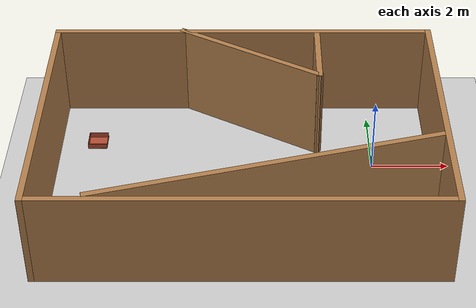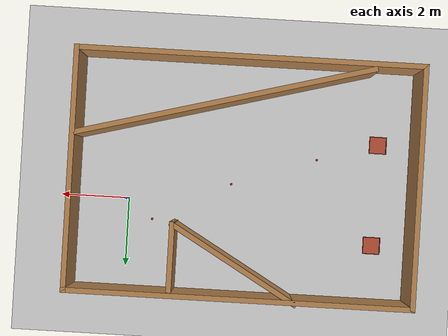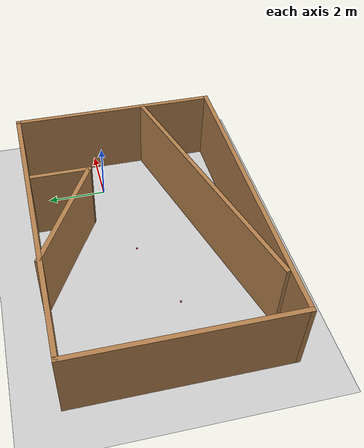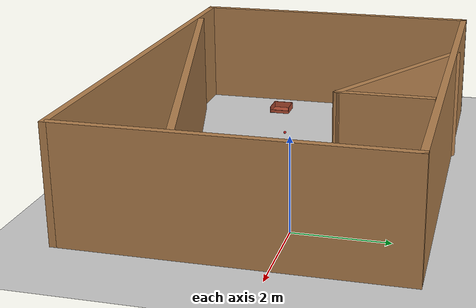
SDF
<sdf version="1.7">
 <world name="default">
  <model name="ground_plane">
   <static>1</static>
   <link name="link">
    <collision name="collision">
     <geometry><plane><normal>0 0 1</normal><size>100 100</size></plane></geometry>
     <surface>
      <contact><collide_bitmask>65535</collide_bitmask></contact>
      <friction><ode><mu>100</mu><mu2>50</mu2></ode></friction>
     </surface>
    </collision>
    <visual name="visual">
     <cast_shadows>0</cast_shadows>
     <geometry><plane><normal>0 0 1</normal><size>100 100</size></plane></geometry>
     <material>
      <script><uri>file://media/materials/scripts/gazebo.material</uri><name>Gazebo/Grey</name></script>
     </material>
    </visual>
   </link>
  </model>
  <light name="sun" type="directional">
   <pose>0 0 10 0 -0 0</pose>
   <diffuse>0.8 0.8 0.8 1</diffuse>
   <specular>0.2 0.2 0.2 1</specular>
   <attenuation>
    <range>1000</range>
    <constant>0.9</constant>
    <linear>0.01</linear>
    <quadratic>0.001</quadratic>
   </attenuation>
   <direction>-0.5 0.1 -0.9</direction>
   <spot><inner_angle>0</inner_angle><outer_angle>0</outer_angle><falloff>0</falloff></spot>
  </light>
  <scene><shadows>0</shadows><ambient>0.4 0.4 0.4 1</ambient><background>0.7 0.7 0.7 1</background></scene>
  <physics type="ode">
   <real_time_update_rate>1000</real_time_update_rate>
   <max_step_size>0.001</max_step_size>
   <real_time_factor>1</real_time_factor>
   <ode>
    <solver>
     <type>quick</type>
     <iters>150</iters>
     <precon_iters>0</precon_iters>
     <sor>1.4</sor>
     <use_dynamic_moi_rescaling>1</use_dynamic_moi_rescaling>
    </solver>
    <constraints>
     <cfm>1e-05</cfm>
     <erp>0.2</erp>
     <contact_max_correcting_vel>2000</contact_max_correcting_vel>
     <contact_surface_layer>0.01</contact_surface_layer>
    </constraints>
   </ode>
  </physics>
  <gravity>0 0 -9.8</gravity>
  <magnetic_field>6e-06 2.3e-05 -4.2e-05</magnetic_field>
  <atmosphere type="adiabatic"/>
  <audio><device>default</device></audio>
  <spherical_coordinates>
   <surface_model>EARTH_WGS84</surface_model>
   <latitude_deg>0</latitude_deg>
   <longitude_deg>0</longitude_deg>
   <elevation>0</elevation>
   <heading_deg>0</heading_deg>
  </spherical_coordinates>
  <model name="Room5">
   <pose>-3.37025 -0.55069 0 0 -0 0</pose>
   <link name="Wall_11">
    <collision name="Wall_11_Collision">
     <geometry><box><size>2 0.15 2.5</size></box></geometry>
     <pose>0 0 1.25 0 -0 0</pose>
    </collision>
    <visual name="Wall_11_Visual">
     <pose>0 0 1.25 0 -0 0</pose>
     <geometry><box><size>2 0.15 2.5</size></box></geometry>
     <material>
      <script><uri>file://media/materials/scripts/gazebo.material</uri><name>Gazebo/Wood</name></script>
      <ambient>1 1 1 1</ambient>
     </material>
     <meta><layer>0</layer></meta>
    </visual>
    <pose>1.96311 2.11609 0 0 -0 -1.5708</pose>
   </link>
   <link name="Wall_12">
    <collision name="Wall_12_Collision">
     <geometry><box><size>4.25 0.15 2.5</size></box></geometry>
     <pose>0 0 1.25 0 -0 0</pose>
    </collision>
    <visual name="Wall_12_Visual">
     <pose>0 0 1.25 0 -0 0</pose>
     <geometry><box><size>4.25 0.15 2.5</size></box></geometry>
     <material>
      <script><uri>file://media/materials/scripts/gazebo.material</uri><name>Gazebo/Wood</name></script>
      <ambient>1 1 1 1</ambient>
     </material>
     <meta><layer>0</layer></meta>
    </visual>
    <pose>0.187757 2.21609 0 0 -0 2.61799</pose>
   </link>
   <link name="Wall_2">
    <collision name="Wall_2_Collision">
     <geometry><box><size>10 0.15 2.5</size></box></geometry>
     <pose>0 0 1.25 0 -0 0</pose>
    </collision>
    <visual name="Wall_2_Visual">
     <pose>0 0 1.25 0 -0 0</pose>
     <geometry><box><size>10 0.15 2.5</size></box></geometry>
     <material>
      <script><uri>file://media/materials/scripts/gazebo.material</uri><name>Gazebo/Wood</name></script>
      <ambient>1 1 1 1</ambient>
     </material>
     <meta><layer>0</layer></meta>
    </visual>
    <pose>0 3.2025 0 0 -0 0</pose>
   </link>
   <link name="Wall_5">
    <collision name="Wall_5_Collision">
     <geometry><box><size>7 0.15 2.5</size></box></geometry>
     <pose>0 0 1.25 0 -0 0</pose>
    </collision>
    <visual name="Wall_5_Visual">
     <pose>0 0 1.25 0 -0 0</pose>
     <geometry><box><size>7 0.15 2.5</size></box></geometry>
     <material>
      <script><uri>file://media/materials/scripts/gazebo.material</uri><name>Gazebo/Wood</name></script>
      <ambient>1 1 1 1</ambient>
     </material>
     <meta><layer>0</layer></meta>
    </visual>
    <pose>4.925 -0.222499 0 0 -0 -1.5708</pose>
   </link>
   <link name="Wall_6">
    <collision name="Wall_6_Collision">
     <geometry><box><size>10 0.15 2.5</size></box></geometry>
     <pose>0 0 1.25 0 -0 0</pose>
    </collision>
    <visual name="Wall_6_Visual">
     <pose>0 0 1.25 0 -0 0</pose>
     <geometry><box><size>10 0.15 2.5</size></box></geometry>
     <material>
      <script><uri>file://media/materials/scripts/gazebo.material</uri><name>Gazebo/Wood</name></script>
      <ambient>1 1 1 1</ambient>
     </material>
     <meta><layer>0</layer></meta>
    </visual>
    <pose>0 -3.6475 0 0 -0 3.14159</pose>
   </link>
   <link name="Wall_7">
    <collision name="Wall_7_Collision">
     <geometry><box><size>7 0.15 2.5</size></box></geometry>
     <pose>0 0 1.25 0 -0 0</pose>
    </collision>
    <visual name="Wall_7_Visual">
     <pose>0 0 1.25 0 -0 0</pose>
     <geometry><box><size>7 0.15 2.5</size></box></geometry>
     <material>
      <script><uri>file://media/materials/scripts/gazebo.material</uri><name>Gazebo/Wood</name></script>
      <ambient>1 1 1 1</ambient>
     </material>
     <meta><layer>0</layer></meta>
    </visual>
    <pose>-4.925 -0.222499 0 0 -0 1.5708</pose>
   </link>
   <link name="Wall_9">
    <collision name="Wall_9_Collision">
     <geometry><box><size>8.75 0.15 2.5</size></box></geometry>
     <pose>0 0 1.25 0 -0 0</pose>
    </collision>
    <visual name="Wall_9_Visual">
     <pose>0 0 1.25 0 -0 0</pose>
     <geometry><box><size>8.75 0.15 2.5</size></box></geometry>
     <material>
      <script><uri>file://media/materials/scripts/gazebo.material</uri><name>Gazebo/Wood</name></script>
      <ambient>1 1 1 1</ambient>
     </material>
     <meta><layer>0</layer></meta>
    </visual>
    <pose>0.655849 -2.38106 0 0 -0 -2.87979</pose>
   </link>
   <static>1</static>
  </model>
  <model name="orange_ball_0">
   <link name="ball">
    <inertial>
     <mass>0.03</mass>
     <inertia>
      <ixx>1.268e-05</ixx>
      <iyy>1.268e-05</iyy>
      <izz>1.268e-05</izz>
      <ixy>0</ixy>
      <ixz>0</ixz>
      <iyz>0</iyz>
     </inertia>
    </inertial>
    <visual name="visual">
     <geometry><sphere><radius>0.0325</radius></sphere></geometry>
     <material>
      <script><uri>file://media/materials/scripts/gazebo.material</uri><name>Gazebo/RedBright</name></script>
      <shader type="pixel"><normal_map>__default__</normal_map></shader>
     </material>
    </visual>
    <collision name="collision">
     <geometry><sphere><radius>0.0325</radius></sphere></geometry>
     <surface>
      <friction>
       <ode><mu>1</mu><mu2>1</mu2><fdir1>0 0 0</fdir1><slip1>0</slip1><slip2>0</slip2></ode>
       <torsional>
        <coefficient>1</coefficient>
        <patch_radius>0</patch_radius>
        <surface_radius>0</surface_radius>
        <use_patch_radius>1</use_patch_radius>
        <ode><slip>0</slip></ode>
       </torsional>
      </friction>
      <bounce><restitution_coefficient>0</restitution_coefficient><threshold>1e+06</threshold></bounce>
      <contact>
       <collide_without_contact>0</collide_without_contact>
       <collide_without_contact_bitmask>1</collide_without_contact_bitmask>
       <collide_bitmask>1</collide_bitmask>
       <ode>
        <soft_cfm>0</soft_cfm>
        <soft_erp>0.2</soft_erp>
        <kp>1e+13</kp>
        <kd>1</kd>
        <max_vel>0.01</max_vel>
        <min_depth>0</min_depth>
       </ode>
       <bullet>
        <split_impulse>1</split_impulse>
        <split_impulse_penetration_threshold>-0.01</split_impulse_penetration_threshold>
        <soft_cfm>0</soft_cfm>
        <soft_erp>0.2</soft_erp>
        <kp>1e+13</kp>
        <kd>1</kd>
       </bullet>
      </contact>
     </surface>
    </collision>
   </link>
   <static>0</static>
   <pose>-0.716427 0.582178 0.0325 0 -0 0</pose>
  </model>
  <model name="strage_box">
   <static>1</static>
   <link name="box_body">
    <collision name="front_collision">
     <pose>0 0.245 0.08 0 -0 0</pose>
     <geometry><box><size>0.5 0.01 0.16</size></box></geometry>
    </collision>
    <visual name="front_visual">
     <pose>0 0.245 0.08 0 -0 0</pose>
     <geometry><box><size>0.5 0.01 0.16</size></box></geometry>
     <material><ambient>0.7 0.3 0.2 1</ambient></material>
    </visual>
    <collision name="back_collision">
     <pose>0 -0.245 0.08 0 -0 0</pose>
     <geometry><box><size>0.5 0.01 0.16</size></box></geometry>
    </collision>
    <visual name="back_visual">
     <pose>0 -0.245 0.08 0 -0 0</pose>
     <geometry><box><size>0.5 0.01 0.16</size></box></geometry>
     <material><ambient>0.7 0.3 0.2 1</ambient></material>
    </visual>
    <collision name="left_collision">
     <pose>-0.245 0 0.08 0 -0 0</pose>
     <geometry><box><size>0.01 0.5 0.16</size></box></geometry>
    </collision>
    <visual name="left_visual">
     <pose>-0.245 0 0.08 0 -0 0</pose>
     <geometry><box><size>0.01 0.5 0.16</size></box></geometry>
     <material><ambient>0.7 0.3 0.2 1</ambient></material>
    </visual>
    <collision name="right_collision">
     <pose>0.245 0 0.04 0 -0 0</pose>
     <geometry><box><size>0.01 0.5 0.08</size></box></geometry>
    </collision>
    <visual name="right_visual">
     <pose>0.245 0 0.04 0 -0 0</pose>
     <geometry><box><size>0.01 0.5 0.08</size></box></geometry>
     <material><ambient>0.7 0.3 0.2 1</ambient></material>
    </visual>
    <collision name="bottom_collision">
     <pose>0 0 0.005 0 -0 0</pose>
     <geometry><box><size>0.5 0.5 0.01</size></box></geometry>
    </collision>
    <visual name="bottom_visual">
     <pose>0 0 0.005 0 -0 0</pose>
     <geometry><box><size>0.5 0.5 0.01</size></box></geometry>
     <material><ambient>0.7 0.3 0.2 1</ambient></material>
    </visual>
   </link>
   <pose>-7.25526 0.99959 0 0 -0 0</pose>
  </model>
  <model name="strage_box_0">
   <static>1</static>
   <link name="box_body">
    <collision name="front_collision">
     <pose>0 0.245 0.08 0 -0 0</pose>
     <geometry><box><size>0.5 0.01 0.16</size></box></geometry>
    </collision>
    <visual name="front_visual">
     <pose>0 0.245 0.08 0 -0 0</pose>
     <geometry><box><size>0.5 0.01 0.16</size></box></geometry>
     <material><ambient>0.7 0.3 0.2 1</ambient></material>
    </visual>
    <collision name="back_collision">
     <pose>0 -0.245 0.08 0 -0 0</pose>
     <geometry><box><size>0.5 0.01 0.16</size></box></geometry>
    </collision>
    <visual name="back_visual">
     <pose>0 -0.245 0.08 0 -0 0</pose>
     <geometry><box><size>0.5 0.01 0.16</size></box></geometry>
     <material><ambient>0.7 0.3 0.2 1</ambient></material>
    </visual>
    <collision name="left_collision">
     <pose>-0.245 0 0.08 0 -0 0</pose>
     <geometry><box><size>0.01 0.5 0.16</size></box></geometry>
    </collision>
    <visual name="left_visual">
     <pose>-0.245 0 0.08 0 -0 0</pose>
     <geometry><box><size>0.01 0.5 0.16</size></box></geometry>
     <material><ambient>0.7 0.3 0.2 1</ambient></material>
    </visual>
    <collision name="right_collision">
     <pose>0.245 0 0.04 0 -0 0</pose>
     <geometry><box><size>0.01 0.5 0.08</size></box></geometry>
    </collision>
    <visual name="right_visual">
     <pose>0.245 0 0.04 0 -0 0</pose>
     <geometry><box><size>0.01 0.5 0.08</size></box></geometry>
     <material><ambient>0.7 0.3 0.2 1</ambient></material>
    </visual>
    <collision name="bottom_collision">
     <pose>0 0 0.005 0 -0 0</pose>
     <geometry><box><size>0.5 0.5 0.01</size></box></geometry>
    </collision>
    <visual name="bottom_visual">
     <pose>0 0 0.005 0 -0 0</pose>
     <geometry><box><size>0.5 0.5 0.01</size></box></geometry>
     <material><ambient>0.7 0.3 0.2 1</ambient></material>
    </visual>
   </link>
   <pose>-7.28125 -1.9809 0 0 -0 0</pose>
  </model>
  <model name="orange_ball_1">
   <link name="ball">
    <inertial>
     <mass>0.03</mass>
     <inertia>
      <ixx>1.268e-05</ixx>
      <iyy>1.268e-05</iyy>
      <izz>1.268e-05</izz>
      <ixy>0</ixy>
      <ixz>0</ixz>
      <iyz>0</iyz>
     </inertia>
    </inertial>
    <visual name="visual">
     <geometry><sphere><radius>0.0325</radius></sphere></geometry>
     <material>
      <script><uri>file://media/materials/scripts/gazebo.material</uri><name>Gazebo/RedBright</name></script>
      <shader type="pixel"><normal_map>__default__</normal_map></shader>
     </material>
    </visual>
    <collision name="collision">
     <geometry><sphere><radius>0.0325</radius></sphere></geometry>
     <surface>
      <friction>
       <ode><mu>1</mu><mu2>1</mu2><fdir1>0 0 0</fdir1><slip1>0</slip1><slip2>0</slip2></ode>
       <torsional>
        <coefficient>1</coefficient>
        <patch_radius>0</patch_radius>
        <surface_radius>0</surface_radius>
        <use_patch_radius>1</use_patch_radius>
        <ode><slip>0</slip></ode>
       </torsional>
      </friction>
      <bounce><restitution_coefficient>0</restitution_coefficient><threshold>1e+06</threshold></bounce>
      <contact>
       <collide_without_contact>0</collide_without_contact>
       <collide_without_contact_bitmask>1</collide_without_contact_bitmask>
       <collide_bitmask>1</collide_bitmask>
       <ode>
        <soft_cfm>0</soft_cfm>
        <soft_erp>0.2</soft_erp>
        <kp>1e+13</kp>
        <kd>1</kd>
        <max_vel>0.01</max_vel>
        <min_depth>0</min_depth>
       </ode>
       <bullet>
        <split_impulse>1</split_impulse>
        <split_impulse_penetration_threshold>-0.01</split_impulse_penetration_threshold>
        <soft_cfm>0</soft_cfm>
        <soft_erp>0.2</soft_erp>
        <kp>1e+13</kp>
        <kd>1</kd>
       </bullet>
      </contact>
     </surface>
    </collision>
   </link>
   <static>0</static>
   <pose>-5.49988 -1.44865 0.0325 0 -0 0</pose>
  </model>
  <model name="p_ball_0">
   <link name="ball">
    <inertial>
     <mass>0.03</mass>
     <inertia>
      <ixx>1.268e-05</ixx>
      <iyy>1.268e-05</iyy>
      <izz>1.268e-05</izz>
      <ixy>0</ixy>
      <ixz>0</ixz>
      <iyz>0</iyz>
     </inertia>
    </inertial>
    <visual name="visual">
     <geometry><sphere><radius>0.0325</radius></sphere></geometry>
     <material>
      <script><uri>file://media/materials/scripts/gazebo.material</uri><name>Gazebo/RedBright</name></script>
      <shader type="pixel"><normal_map>__default__</normal_map></shader>
      <ambient>0 0 0.999 0.8</ambient>
      <diffuse>0.87 0.26 0.07 1</diffuse>
      <specular>0.87 0.26 0.07 1</specular>
      <emissive>0 0 0 1</emissive>
     </material>
    </visual>
    <collision name="collision">
     <geometry><sphere><radius>0.0325</radius></sphere></geometry>
     <surface>
      <friction>
       <ode><mu>1</mu><mu2>1</mu2><fdir1>0 0 0</fdir1><slip1>0</slip1><slip2>0</slip2></ode>
       <torsional>
        <coefficient>1</coefficient>
        <patch_radius>0</patch_radius>
        <surface_radius>0</surface_radius>
        <use_patch_radius>1</use_patch_radius>
        <ode><slip>0</slip></ode>
       </torsional>
      </friction>
      <bounce><restitution_coefficient>0</restitution_coefficient><threshold>1e+06</threshold></bounce>
      <contact>
       <collide_without_contact>0</collide_without_contact>
       <collide_without_contact_bitmask>1</collide_without_contact_bitmask>
       <collide_bitmask>1</collide_bitmask>
       <ode>
        <soft_cfm>0</soft_cfm>
        <soft_erp>0.2</soft_erp>
        <kp>1e+13</kp>
        <kd>1</kd>
        <max_vel>0.01</max_vel>
        <min_depth>0</min_depth>
       </ode>
       <bullet>
        <split_impulse>1</split_impulse>
        <split_impulse_penetration_threshold>-0.01</split_impulse_penetration_threshold>
        <soft_cfm>0</soft_cfm>
        <soft_erp>0.2</soft_erp>
        <kp>1e+13</kp>
        <kd>1</kd>
       </bullet>
      </contact>
     </surface>
    </collision>
   </link>
   <static>0</static>
   <pose>-3.0 -0.582178 0.0325 0 -0 0</pose>
  </model>
  <plugin name="gazebo_link_attacher" filename="libgazebo_link_attacher.so"/>
  <plugin name="gazebo_ros_state" filename="libgazebo_ros_state.so"/>
 </world>
</sdf>
